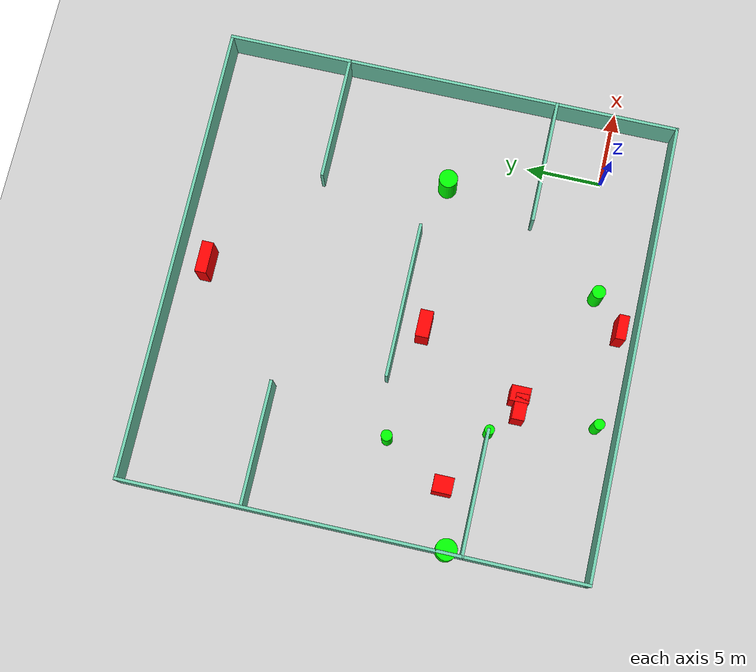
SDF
<sdf version="1.7">
 <world name="default">
  <light name="sun" type="directional">
   <pose>0 0 10 0 -0 0</pose>
   <diffuse>0.8 0.8 0.8 1</diffuse>
   <specular>0.2 0.2 0.2 1</specular>
   <attenuation>
    <range>1000</range>
    <constant>0.9</constant>
    <linear>0.01</linear>
    <quadratic>0.001</quadratic>
   </attenuation>
   <direction>-0.5 0.1 -0.9</direction>
   <spot><inner_angle>0</inner_angle><outer_angle>0</outer_angle><falloff>0</falloff></spot>
  </light>
  <model name="ground_plane">
   <static>1</static>
   <link name="link">
    <collision name="collision">
     <geometry><plane><normal>0 0 1</normal><size>100 100</size></plane></geometry>
     <surface>
      <contact><collide_bitmask>65535</collide_bitmask></contact>
      <friction><ode><mu>100</mu><mu2>50</mu2></ode></friction>
     </surface>
    </collision>
    <visual name="visual">
     <cast_shadows>0</cast_shadows>
     <geometry><plane><normal>0 0 1</normal><size>100 100</size></plane></geometry>
     <material>
      <script><uri>file://media/materials/scripts/gazebo.material</uri><name>Gazebo/Grey</name></script>
     </material>
    </visual>
   </link>
  </model>
  <gravity>0 0 -9.8</gravity>
  <magnetic_field>6e-06 2.3e-05 -4.2e-05</magnetic_field>
  <atmosphere type="adiabatic"/>
  <physics type="ode">
   <max_step_size>0.001</max_step_size>
   <real_time_factor>1</real_time_factor>
   <real_time_update_rate>1000</real_time_update_rate>
  </physics>
  <scene><ambient>0.4 0.4 0.4 1</ambient><background>0.7 0.7 0.7 1</background><shadows>1</shadows></scene>
  <spherical_coordinates>
   <surface_model>EARTH_WGS84</surface_model>
   <latitude_deg>0</latitude_deg>
   <longitude_deg>0</longitude_deg>
   <elevation>0</elevation>
   <heading_deg>0</heading_deg>
  </spherical_coordinates>
  <model name="my_base_walls">
   <link name="Wall_10">
    <collision name="Wall_10_Collision">
     <geometry><box><size>8.2 0.2 2.5</size></box></geometry>
     <pose>0 0 1.25 0 -0 0</pose>
    </collision>
    <visual name="Wall_10_Visual">
     <pose>0 0 1.25 0 -0 0</pose>
     <geometry><box><size>8.2 0.2 2.5</size></box></geometry>
     <material>
      <script><uri>file://media/materials/scripts/gazebo.material</uri><name>Gazebo/Grey</name></script>
      <ambient>0.435294 0.796078 0.67451 1</ambient>
     </material>
     <meta><layer>0</layer></meta>
    </visual>
    <pose>-11 -7 0 0 -0 0</pose>
   </link>
   <link name="Wall_12">
    <collision name="Wall_12_Collision">
     <geometry><box><size>8.2 0.2 2.5</size></box></geometry>
     <pose>0 0 1.25 0 -0 0</pose>
    </collision>
    <visual name="Wall_12_Visual">
     <pose>0 0 1.25 0 -0 0</pose>
     <geometry><box><size>8.2 0.2 2.5</size></box></geometry>
     <material>
      <script><uri>file://media/materials/scripts/gazebo.material</uri><name>Gazebo/Grey</name></script>
      <ambient>0.435294 0.796078 0.67451 1</ambient>
     </material>
     <meta><layer>0</layer></meta>
    </visual>
    <pose>-11 7 0 0 -0 0</pose>
   </link>
   <link name="Wall_14">
    <collision name="Wall_14_Collision">
     <geometry><box><size>8.2 0.2 2.5</size></box></geometry>
     <pose>0 0 1.25 0 -0 0</pose>
    </collision>
    <visual name="Wall_14_Visual">
     <pose>0 0 1.25 0 -0 0</pose>
     <geometry><box><size>8.2 0.2 2.5</size></box></geometry>
     <material>
      <script><uri>file://media/materials/scripts/gazebo.material</uri><name>Gazebo/Grey</name></script>
      <ambient>0.435294 0.796078 0.67451 1</ambient>
     </material>
     <meta><layer>0</layer></meta>
    </visual>
    <pose>11 7 0 0 -0 3.14159</pose>
   </link>
   <link name="Wall_16">
    <collision name="Wall_16_Collision">
     <geometry><box><size>10.2 0.2 2.5</size></box></geometry>
     <pose>0 0 1.25 0 -0 0</pose>
    </collision>
    <visual name="Wall_16_Visual">
     <pose>0 0 1.25 0 -0 0</pose>
     <geometry><box><size>10.2 0.2 2.5</size></box></geometry>
     <material>
      <script><uri>file://media/materials/scripts/gazebo.material</uri><name>Gazebo/Grey</name></script>
      <ambient>0.435294 0.796078 0.67451 1</ambient>
     </material>
     <meta><layer>0</layer></meta>
    </visual>
    <pose>0 0 0 0 -0 3.14159</pose>
   </link>
   <link name="Wall_2">
    <collision name="Wall_2_Collision">
     <geometry><box><size>30.2 0.2 2.5</size></box></geometry>
     <pose>0 0 1.25 0 -0 0</pose>
    </collision>
    <visual name="Wall_2_Visual">
     <pose>0 0 1.25 0 -0 0</pose>
     <geometry><box><size>30.2 0.2 2.5</size></box></geometry>
     <material>
      <script><uri>file://media/materials/scripts/gazebo.material</uri><name>Gazebo/Grey</name></script>
      <ambient>0.435294 0.796078 0.67451 1</ambient>
     </material>
     <meta><layer>0</layer></meta>
    </visual>
    <pose>0 -15 0 0 -0 3.14159</pose>
   </link>
   <link name="Wall_3">
    <collision name="Wall_3_Collision">
     <geometry><box><size>30.2 0.2 2.5</size></box></geometry>
     <pose>0 0 1.25 0 -0 0</pose>
    </collision>
    <visual name="Wall_3_Visual">
     <pose>0 0 1.25 0 -0 0</pose>
     <geometry><box><size>30.2 0.2 2.5</size></box></geometry>
     <material>
      <script><uri>file://media/materials/scripts/gazebo.material</uri><name>Gazebo/Grey</name></script>
      <ambient>0.435294 0.796078 0.67451 1</ambient>
     </material>
     <meta><layer>0</layer></meta>
    </visual>
    <pose>-15 0 0 0 -0 1.5708</pose>
   </link>
   <link name="Wall_4">
    <collision name="Wall_4_Collision">
     <geometry><box><size>30.2 0.2 2.5</size></box></geometry>
     <pose>0 0 1.25 0 -0 0</pose>
    </collision>
    <visual name="Wall_4_Visual">
     <pose>0 0 1.25 0 -0 0</pose>
     <geometry><box><size>30.2 0.2 2.5</size></box></geometry>
     <material>
      <script><uri>file://media/materials/scripts/gazebo.material</uri><name>Gazebo/Grey</name></script>
      <ambient>0.435294 0.796078 0.67451 1</ambient>
     </material>
     <meta><layer>0</layer></meta>
    </visual>
    <pose>0 15 0 0 -0 0</pose>
   </link>
   <link name="Wall_6">
    <collision name="Wall_6_Collision">
     <geometry><box><size>30.2 0.2 2.5</size></box></geometry>
     <pose>0 0 1.25 0 -0 0</pose>
    </collision>
    <visual name="Wall_6_Visual">
     <pose>0 0 1.25 0 -0 0</pose>
     <geometry><box><size>30.2 0.2 2.5</size></box></geometry>
     <material>
      <script><uri>file://media/materials/scripts/gazebo.material</uri><name>Gazebo/Grey</name></script>
      <ambient>0.435294 0.796078 0.67451 1</ambient>
     </material>
     <meta><layer>0</layer></meta>
    </visual>
    <pose>15 0 0 0 -0 1.5708</pose>
   </link>
   <link name="Wall_8">
    <collision name="Wall_8_Collision">
     <geometry><box><size>8.2 0.2 2.5</size></box></geometry>
     <pose>0 0 1.25 0 -0 0</pose>
    </collision>
    <visual name="Wall_8_Visual">
     <pose>0 0 1.25 0 -0 0</pose>
     <geometry><box><size>8.2 0.2 2.5</size></box></geometry>
     <material>
      <script><uri>file://media/materials/scripts/gazebo.material</uri><name>Gazebo/Grey</name></script>
      <ambient>0.435294 0.796078 0.67451 1</ambient>
     </material>
     <meta><layer>0</layer></meta>
    </visual>
    <pose>11 -7 0 0 -0 3.14159</pose>
   </link>
   <static>1</static>
   <pose>-11 11 0 0 -0 0</pose>
  </model>
  <model name="cylinder1">
   <static>1</static>
   <link name="link">
    <inertial>
     <mass>1</mass>
     <inertia><ixx>0.5</ixx><ixy>0</ixy><ixz>0</ixz><iyy>0.5</iyy><iyz>0</iyz><izz>1</izz></inertia>
    </inertial>
    <collision name="collision">
     <geometry><cylinder><radius>0.6108564459621146</radius><length>2.5</length></cylinder></geometry>
    </collision>
    <visual name="visual">
     <geometry><cylinder><radius>0.6108564459621146</radius><length>2.5</length></cylinder></geometry>
     <material>
      <ambient>0 1 0 1</ambient>
      <diffuse>0 1 0 1</diffuse>
      <specular>0.1 0.1 0.1 1</specular>
      <emissive>0 0 0 0</emissive>
     </material>
    </visual>
   </link>
   <pose>-2.5342458055900927 9.910341431284857 1.25 0 0 0</pose>
  </model>
  <model name="cylinder2">
   <static>1</static>
   <link name="link">
    <inertial>
     <mass>1</mass>
     <inertia><ixx>0.5</ixx><ixy>0</ixy><ixz>0</ixz><iyy>0.5</iyy><iyz>0</iyz><izz>1</izz></inertia>
    </inertial>
    <collision name="collision">
     <geometry><cylinder><radius>0.36242689972099895</radius><length>2.5</length></cylinder></geometry>
    </collision>
    <visual name="visual">
     <geometry><cylinder><radius>0.36242689972099895</radius><length>2.5</length></cylinder></geometry>
     <material>
      <ambient>0 1 0 1</ambient>
      <diffuse>0 1 0 1</diffuse>
      <specular>0.1 0.1 0.1 1</specular>
      <emissive>0 0 0 0</emissive>
     </material>
    </visual>
   </link>
   <pose>-19.73606183572699 10.152044271426359 1.25 0 0 0</pose>
  </model>
  <model name="cylinder3">
   <static>1</static>
   <link name="link">
    <inertial>
     <mass>1</mass>
     <inertia><ixx>0.5</ixx><ixy>0</ixy><ixz>0</ixz><iyy>0.5</iyy><iyz>0</iyz><izz>1</izz></inertia>
    </inertial>
    <collision name="collision">
     <geometry><cylinder><radius>0.3163409869910175</radius><length>2.5</length></cylinder></geometry>
    </collision>
    <visual name="visual">
     <geometry><cylinder><radius>0.3163409869910175</radius><length>2.5</length></cylinder></geometry>
     <material>
      <ambient>0 1 0 1</ambient>
      <diffuse>0 1 0 1</diffuse>
      <specular>0.1 0.1 0.1 1</specular>
      <emissive>0 0 0 0</emissive>
     </material>
    </visual>
   </link>
   <pose>-17.991451033094588 3.9444009200092127 1.25 0 0 0</pose>
  </model>
  <model name="cylinder4">
   <static>1</static>
   <link name="link">
    <inertial>
     <mass>1</mass>
     <inertia><ixx>0.5</ixx><ixy>0</ixy><ixz>0</ixz><iyy>0.5</iyy><iyz>0</iyz><izz>1</izz></inertia>
    </inertial>
    <collision name="collision">
     <geometry><cylinder><radius>0.44326722307488914</radius><length>2.5</length></cylinder></geometry>
    </collision>
    <visual name="visual">
     <geometry><cylinder><radius>0.44326722307488914</radius><length>2.5</length></cylinder></geometry>
     <material>
      <ambient>0 1 0 1</ambient>
      <diffuse>0 1 0 1</diffuse>
      <specular>0.1 0.1 0.1 1</specular>
      <emissive>0 0 0 0</emissive>
     </material>
    </visual>
   </link>
   <pose>-7.83586787118249 -1.0617472053587655 1.25 0 0 0</pose>
  </model>
  <model name="cylinder5">
   <static>1</static>
   <link name="link">
    <inertial>
     <mass>1</mass>
     <inertia><ixx>0.5</ixx><ixy>0</ixy><ixz>0</ixz><iyy>0.5</iyy><iyz>0</iyz><izz>1</izz></inertia>
    </inertial>
    <collision name="collision">
     <geometry><cylinder><radius>0.35222903778520975</radius><length>2.5</length></cylinder></geometry>
    </collision>
    <visual name="visual">
     <geometry><cylinder><radius>0.35222903778520975</radius><length>2.5</length></cylinder></geometry>
     <material>
      <ambient>0 1 0 1</ambient>
      <diffuse>0 1 0 1</diffuse>
      <specular>0.1 0.1 0.1 1</specular>
      <emissive>0 0 0 0</emissive>
     </material>
    </visual>
   </link>
   <pose>-16.17083957592305 -2.6863253922911032 1.25 0 0 0</pose>
  </model>
  <model name="cylinder6">
   <static>1</static>
   <link name="link">
    <inertial>
     <mass>1</mass>
     <inertia><ixx>0.5</ixx><ixy>0</ixy><ixz>0</ixz><iyy>0.5</iyy><iyz>0</iyz><izz>1</izz></inertia>
    </inertial>
    <collision name="collision">
     <geometry><cylinder><radius>0.6937157568851733</radius><length>2.5</length></cylinder></geometry>
    </collision>
    <visual name="visual">
     <geometry><cylinder><radius>0.6937157568851733</radius><length>2.5</length></cylinder></geometry>
     <material>
      <ambient>0 1 0 1</ambient>
      <diffuse>0 1 0 1</diffuse>
      <specular>0.1 0.1 0.1 1</specular>
      <emissive>0 0 0 0</emissive>
     </material>
    </visual>
   </link>
   <pose>-25.790218750251956 5.026222342731604 1.25 0 0 0</pose>
  </model>
  <model name="box1">
   <static>1</static>
   <link name="link">
    <inertial>
     <mass>1</mass>
     <inertia><ixx>0.083</ixx><ixy>0</ixy><ixz>0</ixz><iyy>0.083</iyy><iyz>0</iyz><izz>0.083</izz></inertia>
    </inertial>
    <collision name="collision">
     <geometry><box><size>1.0043866992802626 1.262387619736245 2.5</size></box></geometry>
    </collision>
    <visual name="visual">
     <geometry><box><size>1.0043866992802626 1.262387619736245 2.5</size></box></geometry>
     <material>
      <ambient>1 0 0 1</ambient>
      <diffuse>1 0 0 1</diffuse>
      <specular>0.1 0.1 0.1 1</specular>
      <emissive>0 0 0 0</emissive>
     </material>
    </visual>
    <sensor name="my_contact" type="contact">
     <contact><collision>box_collision</collision><topic>__default_topic__</topic></contact>
    </sensor>
   </link>
   <pose>-15.37292903532367 2.5056054001070986 1.25 0 0 0</pose>
  </model>
  <model name="box2">
   <static>1</static>
   <link name="link">
    <inertial>
     <mass>1</mass>
     <inertia><ixx>0.083</ixx><ixy>0</ixy><ixz>0</ixz><iyy>0.083</iyy><iyz>0</iyz><izz>0.083</izz></inertia>
    </inertial>
    <collision name="collision">
     <geometry><box><size>2.0551481065040034 0.7620916670495693 2.5</size></box></geometry>
    </collision>
    <visual name="visual">
     <geometry><box><size>2.0551481065040034 0.7620916670495693 2.5</size></box></geometry>
     <material>
      <ambient>1 0 0 1</ambient>
      <diffuse>1 0 0 1</diffuse>
      <specular>0.1 0.1 0.1 1</specular>
      <emissive>0 0 0 0</emissive>
     </material>
    </visual>
    <sensor name="my_contact" type="contact">
     <contact><collision>box_collision</collision><topic>__default_topic__</topic></contact>
    </sensor>
   </link>
   <pose>-11.074834846980984 24.110297376693925 1.25 0 0 0</pose>
  </model>
  <model name="box3">
   <static>1</static>
   <link name="link">
    <inertial>
     <mass>1</mass>
     <inertia><ixx>0.083</ixx><ixy>0</ixy><ixz>0</ixz><iyy>0.083</iyy><iyz>0</iyz><izz>0.083</izz></inertia>
    </inertial>
    <collision name="collision">
     <geometry><box><size>1.7696550121203996 0.861283174387854 2.5</size></box></geometry>
    </collision>
    <visual name="visual">
     <geometry><box><size>1.7696550121203996 0.861283174387854 2.5</size></box></geometry>
     <material>
      <ambient>1 0 0 1</ambient>
      <diffuse>1 0 0 1</diffuse>
      <specular>0.1 0.1 0.1 1</specular>
      <emissive>0 0 0 0</emissive>
     </material>
    </visual>
    <sensor name="my_contact" type="contact">
     <contact><collision>box_collision</collision><topic>__default_topic__</topic></contact>
    </sensor>
   </link>
   <pose>-12.262308099934895 9.370381631836684 1.25 0 0 0</pose>
  </model>
  <model name="box4">
   <static>1</static>
   <link name="link">
    <inertial>
     <mass>1</mass>
     <inertia><ixx>0.083</ixx><ixy>0</ixy><ixz>0</ixz><iyy>0.083</iyy><iyz>0</iyz><izz>0.083</izz></inertia>
    </inertial>
    <collision name="collision">
     <geometry><box><size>1.6000041425292253 0.6708105605392441 2.5</size></box></geometry>
    </collision>
    <visual name="visual">
     <geometry><box><size>1.6000041425292253 0.6708105605392441 2.5</size></box></geometry>
     <material>
      <ambient>1 0 0 1</ambient>
      <diffuse>1 0 0 1</diffuse>
      <specular>0.1 0.1 0.1 1</specular>
      <emissive>0 0 0 0</emissive>
     </material>
    </visual>
    <sensor name="my_contact" type="contact">
     <contact><collision>box_collision</collision><topic>__default_topic__</topic></contact>
    </sensor>
   </link>
   <pose>-9.768838256874712 -2.958163081460893 1.25 0 0 0</pose>
  </model>
  <model name="box5">
   <static>1</static>
   <link name="link">
    <inertial>
     <mass>1</mass>
     <inertia><ixx>0.083</ixx><ixy>0</ixy><ixz>0</ixz><iyy>0.083</iyy><iyz>0</iyz><izz>0.083</izz></inertia>
    </inertial>
    <collision name="collision">
     <geometry><box><size>1.6889600656714574 0.8309658225310903 2.5</size></box></geometry>
    </collision>
    <visual name="visual">
     <geometry><box><size>1.6889600656714574 0.8309658225310903 2.5</size></box></geometry>
     <material>
      <ambient>1 0 0 1</ambient>
      <diffuse>1 0 0 1</diffuse>
      <specular>0.1 0.1 0.1 1</specular>
      <emissive>0 0 0 0</emissive>
     </material>
    </visual>
    <sensor name="my_contact" type="contact">
     <contact><collision>box_collision</collision><topic>__default_topic__</topic></contact>
    </sensor>
   </link>
   <pose>-16.15099653142386 2.359974135918634 1.25 0 0 0</pose>
  </model>
  <model name="box6">
   <static>1</static>
   <link name="link">
    <inertial>
     <mass>1</mass>
     <inertia><ixx>0.083</ixx><ixy>0</ixy><ixz>0</ixz><iyy>0.083</iyy><iyz>0</iyz><izz>0.083</izz></inertia>
    </inertial>
    <collision name="collision">
     <geometry><box><size>1.0847400366637348 1.2668543428378505 2.5</size></box></geometry>
    </collision>
    <visual name="visual">
     <geometry><box><size>1.0847400366637348 1.2668543428378505 2.5</size></box></geometry>
     <material>
      <ambient>1 0 0 1</ambient>
      <diffuse>1 0 0 1</diffuse>
      <specular>0.1 0.1 0.1 1</specular>
      <emissive>0 0 0 0</emissive>
     </material>
    </visual>
    <sensor name="my_contact" type="contact">
     <contact><collision>box_collision</collision><topic>__default_topic__</topic></contact>
    </sensor>
   </link>
   <pose>-21.948448602693205 6.062760519624511 1.25 0 0 0</pose>
  </model>
 </world>
</sdf>
